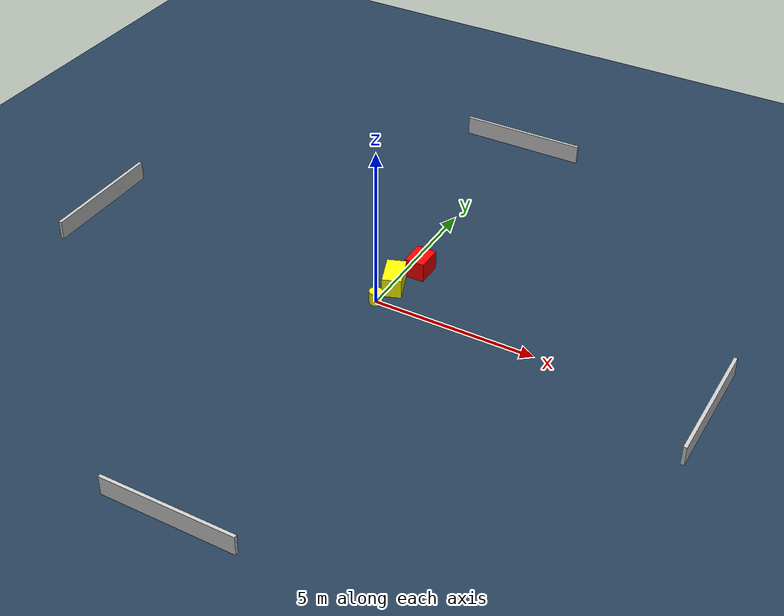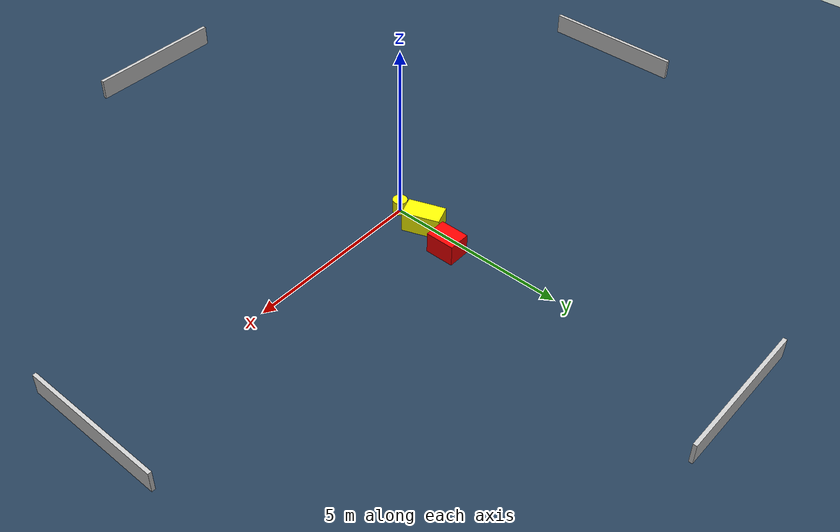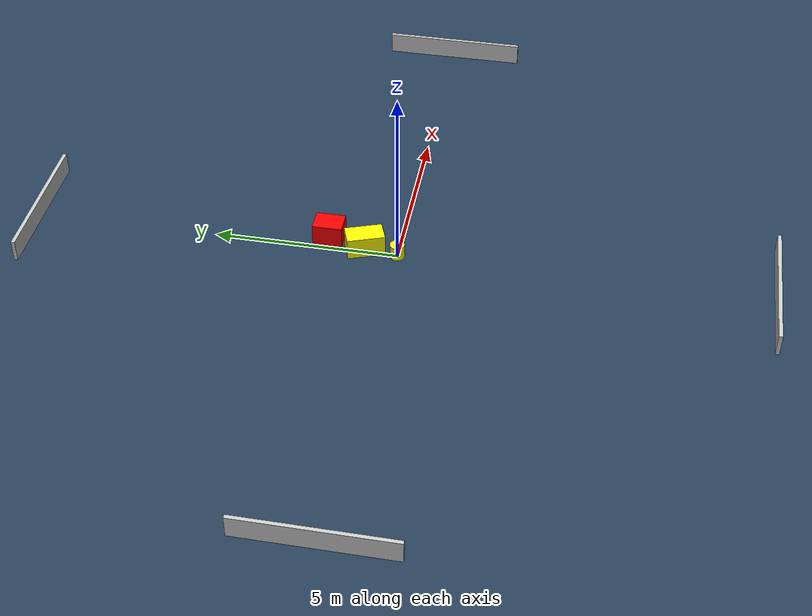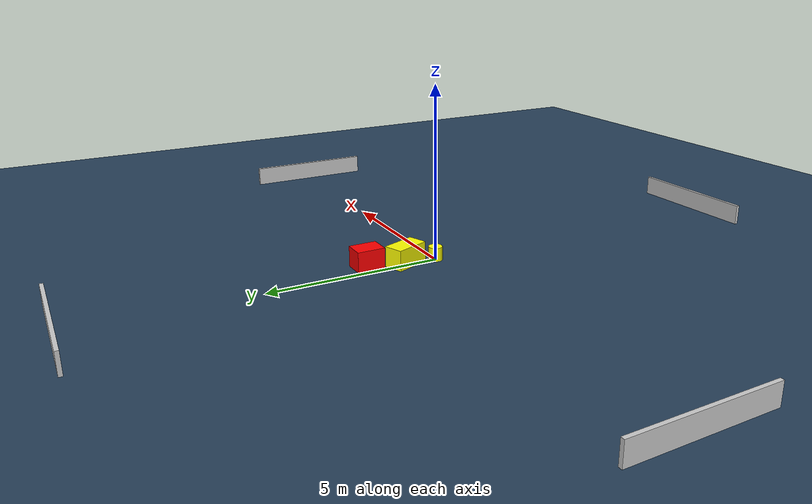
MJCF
<?xml version="1.0" ?>
<mujoco model="generated_environment">
  <option timestep="0.01" integrator="RK4" cone="elliptic"/>
  <default>
    <geom density="1"/>
  </default>
  <asset>
    <texture builtin="gradient" height="3072" name="skybox" rgb1="0.3 0.5 0.7" rgb2="0 0 0" type="skybox" width="512"/>
    <texture builtin="checker" height="300" name="groundplane" rgb1="0.2 0.3 0.4" rgb2="0.1 0.2 0.3" type="2d" width="300"/>
    <material name="groundplane" reflectance="0.2" texrepeat="5 5" texture="groundplane"/>
  </asset>
  <worldbody>
    <light dir="0 0 -1" directional="true" pos="0 0 1.5"/>
    <geom condim="3" friction="0.5 0.005 0.001" material="groundplane" name="floor" pos="0 0 0" size="0 0 0.05" type="plane"/>
    <body name="walls">
      <geom name="wall_1" condim="4" pos="-10.0 0.0 0.3" rgba="0.800000011920929 0.800000011920929 0.800000011920929 1.0" size="0.05 2.0 0.3" type="box"/>
      <geom name="wall_2" condim="4" pos="10.0 0.0 0.3" rgba="0.800000011920929 0.800000011920929 0.800000011920929 1.0" size="0.05 2.0 0.3" type="box"/>
      <geom name="wall_3" condim="4" pos="0.0 -10.0 0.3" rgba="0.800000011920929 0.800000011920929 0.800000011920929 1.0" size="2.0 0.05 0.3" type="box"/>
      <geom name="wall_4" condim="4" pos="0.0 10.0 0.3" rgba="0.800000011920929 0.800000011920929 0.800000011920929 1.0" size="2.0 0.05 0.3" type="box"/>
    </body>
    <body name="robot">
      <joint name="joint_x" type="slide" pos="0 0 0" axis="1 0 0"/>
      <joint name="joint_y" type="slide" pos="0 0 0" axis="0 1 0"/>
      <geom name="robot" type="cylinder" pos="0.0 0.0 0.2" size="0.2 0.2 0.0" mass="5.0" friction="1.0 0.005 0.0001" condim="4" rgba="1.0 1.0 0.0 1.0"/>
    </body>
    <body name="obstacle_1_movable">
      <geom name="obstacle_1_movable" condim="4" pos="0.09726091862235577 0.9057680129879253 0.3" euler="0 0 290.207390215825" friction="0.0 0.005 0.001" rgba="1.0 1.0 0.0 1.0" size="0.5108146076809241 0.2876191413974539 0.3" type="box" mass="0.1"/>
      <joint type="free"/>
    </body>
    <body name="obstacle_2_static">
      <geom name="obstacle_2_static" condim="4" pos="0.4081122642021218 1.9463279814814205 0.3" euler="0 0 0.08725753161967997" friction="0.0 0.005 0.001" rgba="1.0 0.0 0.0 1.0" size="0.30736523320670206 0.40260301363244566 0.3" type="box"/>
    </body>
  </worldbody>
  <actuator>
    <motor name="actuator_x" joint="joint_x" gear="1" ctrlrange="-1 1"/>
    <motor name="actuator_y" joint="joint_y" gear="1" ctrlrange="-1 1"/>
  </actuator>
</mujoco>
